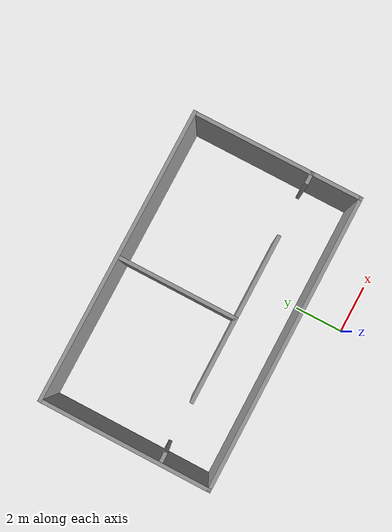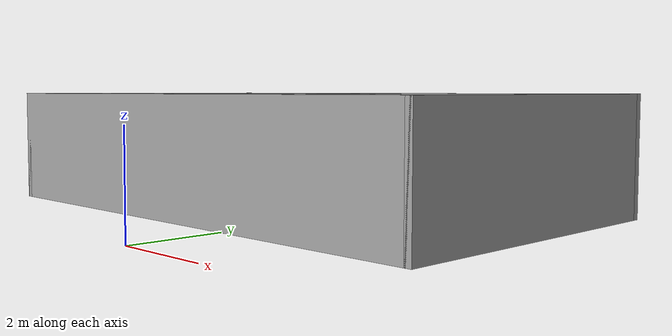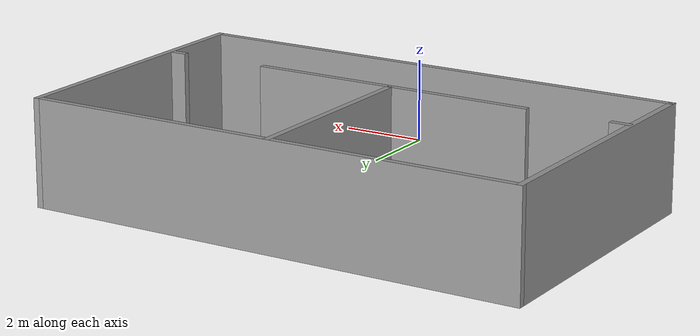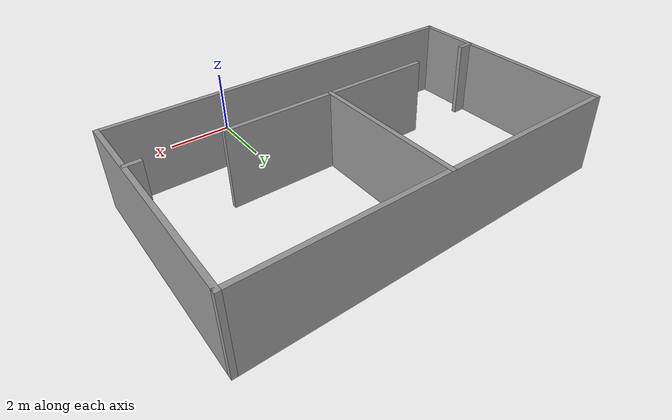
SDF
<?xml version='1.0'?>
<sdf version='1.6'>
  <model name='two_room'>
    <pose frame=''>-1.52822 5.44596 0 0 -0 0</pose>
    <link name='Wall_10'>
      <collision name='Wall_10_Collision'>
        <geometry>
          <box>
            <size>5 0.15 2.5</size>
          </box>
        </geometry>
        <pose frame=''>0 0 1.25 0 -0 0</pose>
      </collision>
      <visual name='Wall_10_Visual'>
        <pose frame=''>0 0 1.25 0 -0 0</pose>
        <geometry>
          <box>
            <size>5 0.15 2.5</size>
          </box>
        </geometry>
        <material>
          <script>
            <uri>file://media/materials/scripts/gazebo.material</uri>
            <name>Gazebo/Grey</name>
          </script>
          <ambient>1 1 1 1</ambient>
        </material>
      </visual>
      <pose frame=''>-0.069306 0.99918 0 0 0 -1.5708</pose>
    </link>
    <link name='Wall_11'>
      <collision name='Wall_11_Collision'>
        <geometry>
          <box>
            <size>3.5 0.15 2.5</size>
          </box>
        </geometry>
        <pose frame=''>0 0 1.25 0 -0 0</pose>
      </collision>
      <visual name='Wall_11_Visual'>
        <pose frame=''>0 0 1.25 0 -0 0</pose>
        <geometry>
          <box>
            <size>3.5 0.15 2.5</size>
          </box>
        </geometry>
        <material>
          <script>
            <uri>file://media/materials/scripts/gazebo.material</uri>
            <name>Gazebo/Grey</name>
          </script>
          <ambient>1 1 1 1</ambient>
        </material>
      </visual>
      <pose frame=''>-1.74431 -1.42582 0 0 -0 3.14159</pose>
    </link>
    <link name='Wall_15'>
      <collision name='Wall_15_Collision'>
        <geometry>
          <box>
            <size>0.5 0.15 2.5</size>
          </box>
        </geometry>
        <pose frame=''>0 0 1.25 0 -0 0</pose>
      </collision>
      <visual name='Wall_15_Visual'>
        <pose frame=''>0 0 1.25 0 -0 0</pose>
        <geometry>
          <box>
            <size>0.5 0.15 2.5</size>
          </box>
        </geometry>
        <material>
          <script>
            <uri>file://media/materials/scripts/gazebo.material</uri>
            <name>Gazebo/Grey</name>
          </script>
          <ambient>1 1 1 1</ambient>
        </material>
      </visual>
      <pose frame=''>5.71981 -1.42057 0 0 -0 3.14159</pose>
    </link>
    <link name='Wall_17'>
      <collision name='Wall_17_Collision'>
        <geometry>
          <box>
            <size>3.5 0.15 2.5</size>
          </box>
        </geometry>
        <pose frame=''>0 0 1.25 0 -0 0</pose>
      </collision>
      <visual name='Wall_17_Visual'>
        <pose frame=''>0 0 1.25 0 -0 0</pose>
        <geometry>
          <box>
            <size>3.5 0.15 2.5</size>
          </box>
        </geometry>
        <material>
          <script>
            <uri>file://media/materials/scripts/gazebo.material</uri>
            <name>Gazebo/Grey</name>
          </script>
          <ambient>1 1 1 1</ambient>
        </material>
      </visual>
      <pose frame=''>1.60569 -1.42582 0 0 -0 0</pose>
    </link>
    <link name='Wall_21'>
      <collision name='Wall_21_Collision'>
        <geometry>
          <box>
            <size>0.5 0.15 2.5</size>
          </box>
        </geometry>
        <pose frame=''>0 0 1.25 0 -0 0</pose>
      </collision>
      <visual name='Wall_21_Visual'>
        <pose frame=''>0 0 1.25 0 -0 0</pose>
        <geometry>
          <box>
            <size>0.5 0.15 2.5</size>
          </box>
        </geometry>
        <material>
          <script>
            <uri>file://media/materials/scripts/gazebo.material</uri>
            <name>Gazebo/Grey</name>
          </script>
          <ambient>1 1 1 1</ambient>
        </material>
      </visual>
      <pose frame=''>-5.69065 -1.43697 0 0 -0 0</pose>
    </link>
    <link name='Wall_5'>
      <collision name='Wall_5_Collision'>
        <geometry>
          <box>
            <size>7 0.15 2.5</size>
          </box>
        </geometry>
        <pose frame=''>0 0 1.25 0 -0 0</pose>
      </collision>
      <visual name='Wall_5_Visual'>
        <pose frame=''>0 0 1.25 0 -0 0</pose>
        <geometry>
          <box>
            <size>7 0.15 2.5</size>
          </box>
        </geometry>
        <material>
          <script>
            <uri>file://media/materials/scripts/gazebo.material</uri>
            <name>Gazebo/Grey</name>
          </script>
          <ambient>1 1 1 1</ambient>
        </material>
      </visual>
      <pose frame=''>-5.925 0 0 0 0 -1.5708</pose>
    </link>
    <link name='Wall_6'>
      <collision name='Wall_6_Collision'>
        <geometry>
          <box>
            <size>12 0.15 2.5</size>
          </box>
        </geometry>
        <pose frame=''>0 0 1.25 0 -0 0</pose>
      </collision>
      <visual name='Wall_6_Visual'>
        <pose frame=''>0 0 1.25 0 -0 0</pose>
        <geometry>
          <box>
            <size>12 0.15 2.5</size>
          </box>
        </geometry>
        <material>
          <script>
            <uri>file://media/materials/scripts/gazebo.material</uri>
            <name>Gazebo/Grey</name>
          </script>
          <ambient>1 1 1 1</ambient>
        </material>
      </visual>
      <pose frame=''>0 -3.425 0 0 -0 0</pose>
    </link>
    <link name='Wall_7'>
      <collision name='Wall_7_Collision'>
        <geometry>
          <box>
            <size>7 0.15 2.5</size>
          </box>
        </geometry>
        <pose frame=''>0 0 1.25 0 -0 0</pose>
      </collision>
      <visual name='Wall_7_Visual'>
        <pose frame=''>0 0 1.25 0 -0 0</pose>
        <geometry>
          <box>
            <size>7 0.15 2.5</size>
          </box>
        </geometry>
        <material>
          <script>
            <uri>file://media/materials/scripts/gazebo.material</uri>
            <name>Gazebo/Grey</name>
          </script>
          <ambient>1 1 1 1</ambient>
        </material>
      </visual>
      <pose frame=''>5.925 0 0 0 -0 1.5708</pose>
    </link>
    <link name='Wall_8'>
      <collision name='Wall_8_Collision'>
        <geometry>
          <box>
            <size>12 0.15 2.5</size>
          </box>
        </geometry>
        <pose frame=''>0 0 1.25 0 -0 0</pose>
      </collision>
      <visual name='Wall_8_Visual'>
        <pose frame=''>0 0 1.25 0 -0 0</pose>
        <geometry>
          <box>
            <size>12 0.15 2.5</size>
          </box>
        </geometry>
        <material>
          <script>
            <uri>file://media/materials/scripts/gazebo.material</uri>
            <name>Gazebo/Grey</name>
          </script>
          <ambient>1 1 1 1</ambient>
        </material>
      </visual>
      <pose frame=''>0 3.425 0 0 -0 3.14159</pose>
    </link>
    <static>1</static>
  </model>
</sdf>
